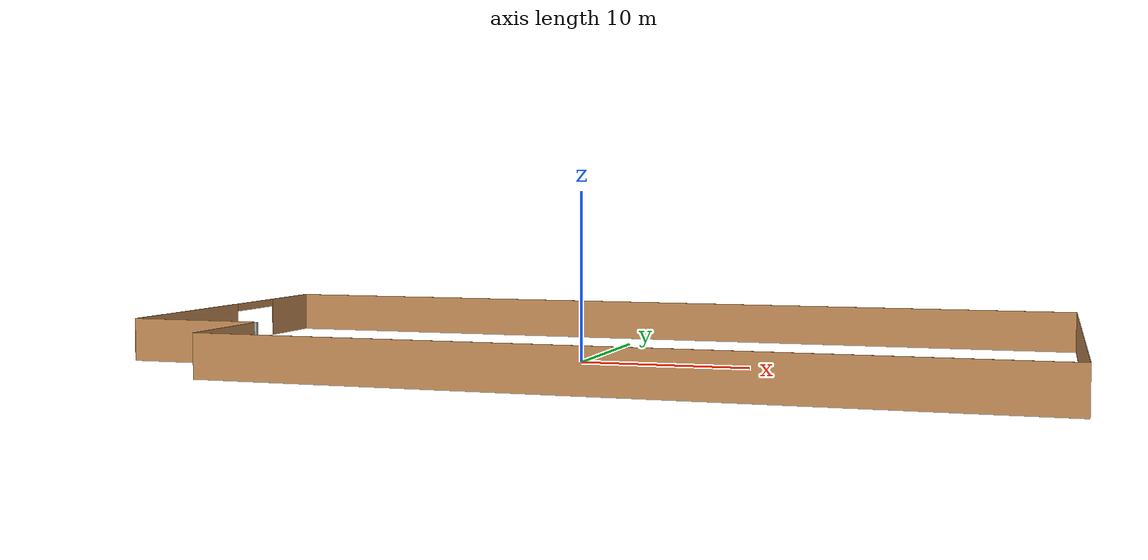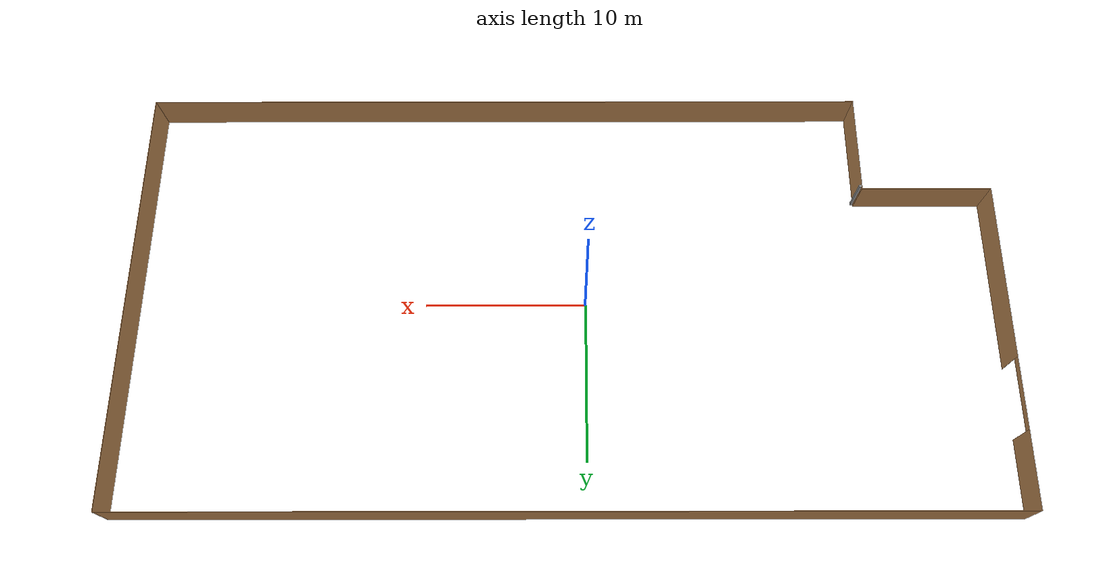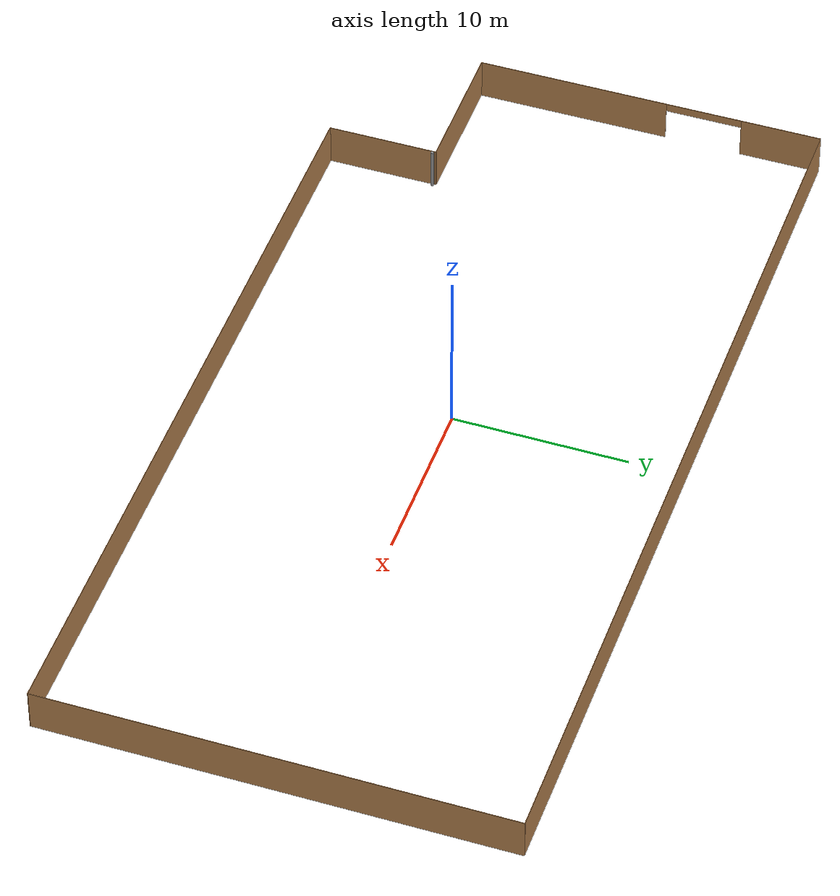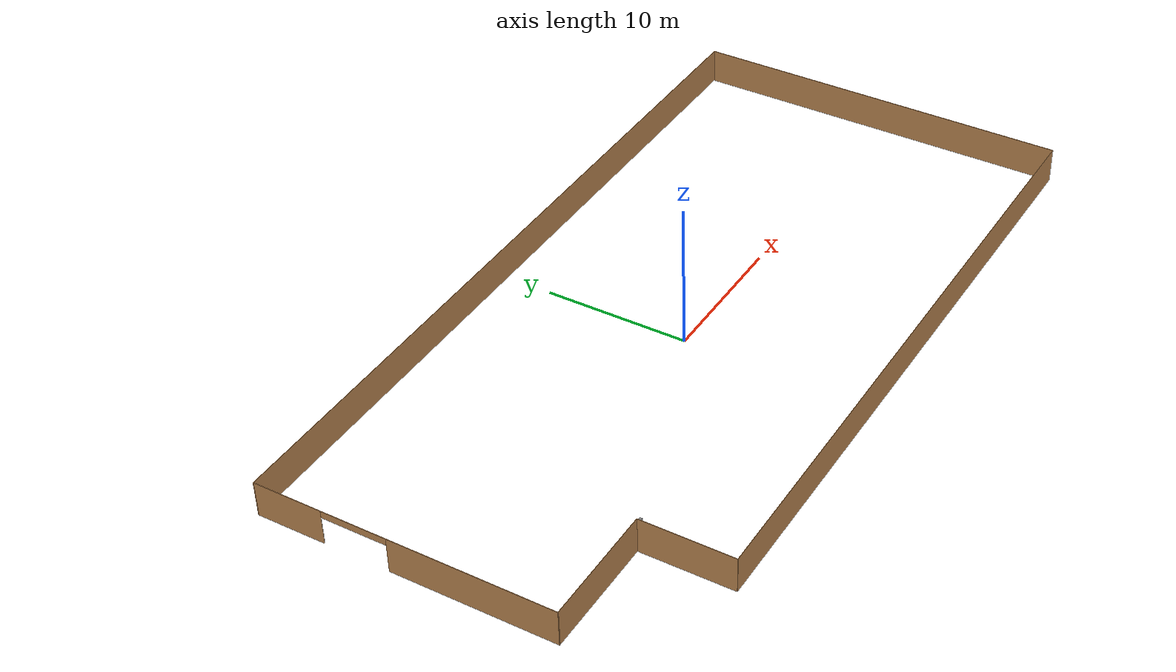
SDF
<?xml version='1.0'?>
<sdf version='1.6'>
  <model name='riseholme_enclosure'>
    <pose frame=''>1.17861 0.026 0 0 -0 0</pose>
    <link name='Wall_19'>
      <collision name='Wall_19_Collision'>
        <geometry>
          <box>
            <size>0.15 0.15 2.5</size>
          </box>
        </geometry>
        <pose frame=''>0 0 1.25 0 -0 0</pose>
      </collision>
      <visual name='Wall_19_Visual'>
        <pose frame=''>0 0 1.25 0 -0 0</pose>
        <geometry>
          <box>
            <size>0.15 0.15 2.5</size>
          </box>
        </geometry>
        <material>
          <script>
            <uri>file://media/materials/scripts/gazebo.material</uri>
            <name>Gazebo/Grey</name>
          </script>
          <ambient>1 1 1 1</ambient>
        </material>
        <meta>
          <layer>0</layer>
        </meta>
      </visual>
      <pose frame=''>-18.5231 -7.12802 0 0 -0 0</pose>
    </link>
    <link name='Wall_33'>
      <collision name='Wall_33_Collision'>
        <geometry>
          <box>
            <size>53.487 0.03 2.5</size>
          </box>
        </geometry>
        <pose frame=''>0 0 1.25 0 -0 0</pose>
      </collision>
      <visual name='Wall_33_Visual'>
        <pose frame=''>0 0 1.25 0 -0 0</pose>
        <geometry>
          <box>
            <size>53.487 0.03 2.5</size>
          </box>
        </geometry>
        <material>
          <script>
            <uri>file://media/materials/scripts/gazebo.material</uri>
            <name>Gazebo/Wood</name>
          </script>
          <ambient>1 1 1 1</ambient>
        </material>
        <meta>
          <layer>0</layer>
        </meta>
      </visual>
      <pose frame=''>-0.000107 13.3 0 0 -0 0</pose>
    </link>
    <link name='Wall_34'>
      <collision name='Wall_34_Collision'>
        <geometry>
          <box>
            <size>26.6301 0.03 2.5</size>
          </box>
        </geometry>
        <pose frame=''>0 0 1.25 0 -0 0</pose>
      </collision>
      <visual name='Wall_34_Visual'>
        <pose frame=''>0 0 1.25 0 -0 0</pose>
        <geometry>
          <box>
            <size>26.6301 0.03 2.5</size>
          </box>
        </geometry>
        <material>
          <script>
            <uri>file://media/materials/scripts/gazebo.material</uri>
            <name>Gazebo/Wood</name>
          </script>
          <ambient>1 1 1 1</ambient>
        </material>
        <meta>
          <layer>0</layer>
        </meta>
      </visual>
      <pose frame=''>26.7284 -0 0 0 -0 -1.5708</pose>
    </link>
    <link name='Wall_35'>
      <collision name='Wall_35_Collision'>
        <geometry>
          <box>
            <size>45.3804 0.03 2.5</size>
          </box>
        </geometry>
        <pose frame=''>0 0 1.25 0 -0 0</pose>
      </collision>
      <visual name='Wall_35_Visual'>
        <pose frame=''>0 0 1.25 0 -0 0</pose>
        <geometry>
          <box>
            <size>45.3804 0.03 2.5</size>
          </box>
        </geometry>
        <material>
          <script>
            <uri>file://media/materials/scripts/gazebo.material</uri>
            <name>Gazebo/Wood</name>
          </script>
          <ambient>1 1 1 1</ambient>
        </material>
        <meta>
          <layer>0</layer>
        </meta>
      </visual>
      <pose frame=''>4.05339 -13.3 0 0 -0 3.14159</pose>
    </link>
    <link name='Wall_36'>
      <collision name='Wall_36_Collision'>
        <geometry>
          <box>
            <size>6.37986 0.03 2.5</size>
          </box>
        </geometry>
        <pose frame=''>0 0 1.25 0 -0 0</pose>
      </collision>
      <visual name='Wall_36_Visual'>
        <pose frame=''>0 0 1.25 0 -0 0</pose>
        <geometry>
          <box>
            <size>6.37986 0.03 2.5</size>
          </box>
        </geometry>
        <material>
          <script>
            <uri>file://media/materials/scripts/gazebo.material</uri>
            <name>Gazebo/Wood</name>
          </script>
          <ambient>1 1 1 1</ambient>
        </material>
        <meta>
          <layer>0</layer>
        </meta>
      </visual>
      <pose frame=''>-18.6216 -10.125 0 0 -0 1.5708</pose>
    </link>
    <link name='Wall_37'>
      <collision name='Wall_37_Collision'>
        <geometry>
          <box>
            <size>8.13043 0.03 2.5</size>
          </box>
        </geometry>
        <pose frame=''>0 0 1.25 0 -0 0</pose>
      </collision>
      <visual name='Wall_37_Visual'>
        <pose frame=''>0 0 1.25 0 -0 0</pose>
        <geometry>
          <box>
            <size>8.13043 0.03 2.5</size>
          </box>
        </geometry>
        <material>
          <script>
            <uri>file://media/materials/scripts/gazebo.material</uri>
            <name>Gazebo/Wood</name>
          </script>
          <ambient>1 1 1 1</ambient>
        </material>
        <meta>
          <layer>0</layer>
        </meta>
      </visual>
      <pose frame=''>-22.6716 -6.95 0 0 -0 3.14159</pose>
    </link>
    <link name='Wall_38'>
      <pose frame=''>-26.7216 3.162 0 0 -0 1.5708</pose>
      <visual name='Wall_38_Visual_0'>
        <pose frame=''>-4.55471 0 1.25 0 -0 0</pose>
        <geometry>
          <box>
            <size>11.1446 0.03 2.5</size>
          </box>
        </geometry>
        <material>
          <script>
            <uri>file://media/materials/scripts/gazebo.material</uri>
            <name>Gazebo/Wood</name>
          </script>
          <ambient>1 1 1 1</ambient>
        </material>
        <meta>
          <layer>0</layer>
        </meta>
      </visual>
      <collision name='Wall_38_Collision_0'>
        <geometry>
          <box>
            <size>11.1446 0.03 2.5</size>
          </box>
        </geometry>
        <pose frame=''>-4.55471 0 1.25 0 -0 0</pose>
      </collision>
      <visual name='Wall_38_Visual_1'>
        <pose frame=''>7.79329 0 1.25 0 -0 0</pose>
        <geometry>
          <box>
            <size>4.66742 0.03 2.5</size>
          </box>
        </geometry>
        <material>
          <script>
            <uri>file://media/materials/scripts/gazebo.material</uri>
            <name>Gazebo/Wood</name>
          </script>
          <ambient>1 1 1 1</ambient>
        </material>
        <meta>
          <layer>0</layer>
        </meta>
      </visual>
      <collision name='Wall_38_Collision_1'>
        <geometry>
          <box>
            <size>4.66742 0.03 2.5</size>
          </box>
        </geometry>
        <pose frame=''>7.79329 0 1.25 0 -0 0</pose>
      </collision>
      <visual name='Wall_38_Visual_2'>
        <pose frame=''>3.23858 0 2.25 0 -0 0</pose>
        <geometry>
          <box>
            <size>4.442 0.03 0.5</size>
          </box>
        </geometry>
        <material>
          <script>
            <uri>file://media/materials/scripts/gazebo.material</uri>
            <name>Gazebo/Wood</name>
          </script>
          <ambient>1 1 1 1</ambient>
        </material>
        <meta>
          <layer>0</layer>
        </meta>
      </visual>
      <collision name='Wall_38_Collision_2'>
        <geometry>
          <box>
            <size>4.442 0.03 0.5</size>
          </box>
        </geometry>
        <pose frame=''>3.23858 0 2.25 0 -0 0</pose>
      </collision>
    </link>
    <static>1</static>
  </model>
</sdf>
